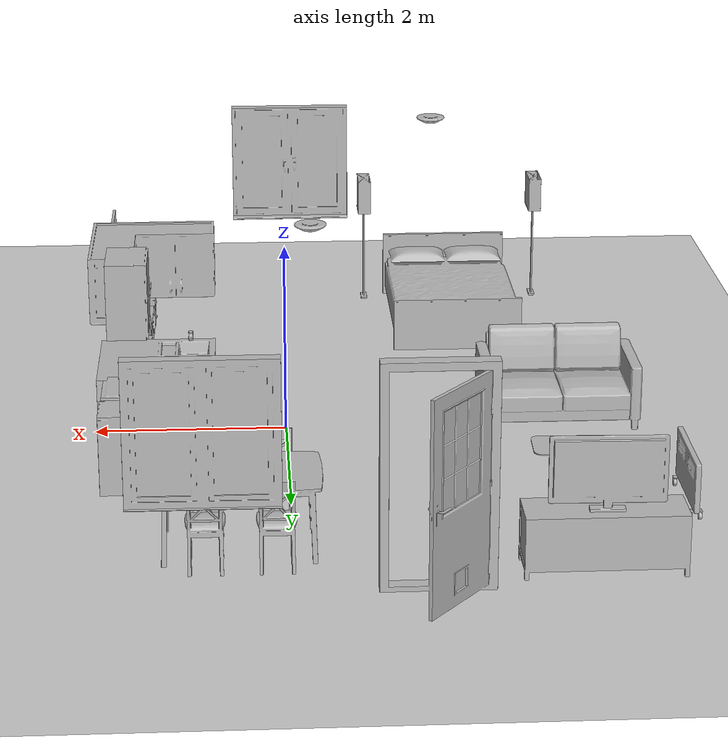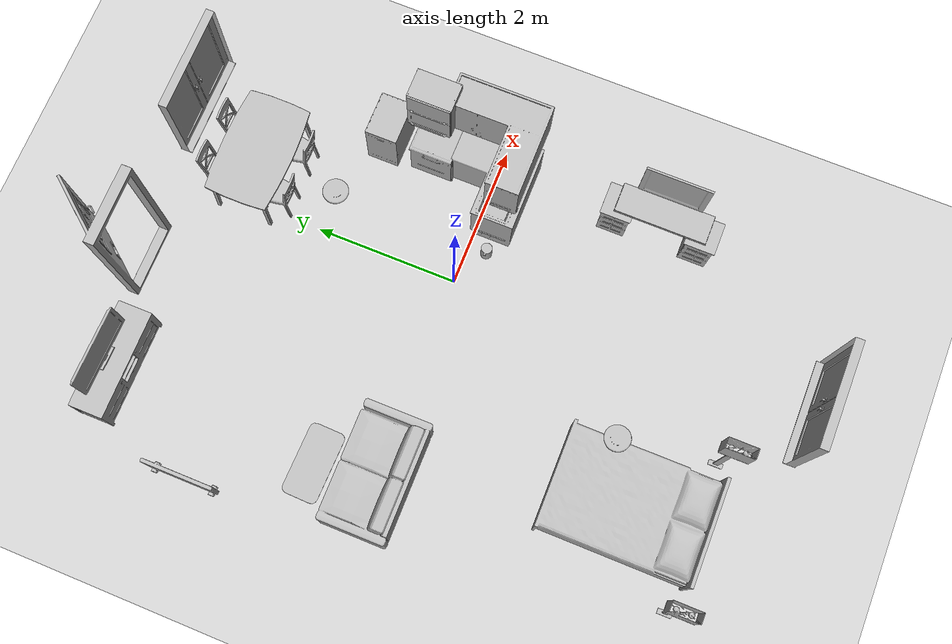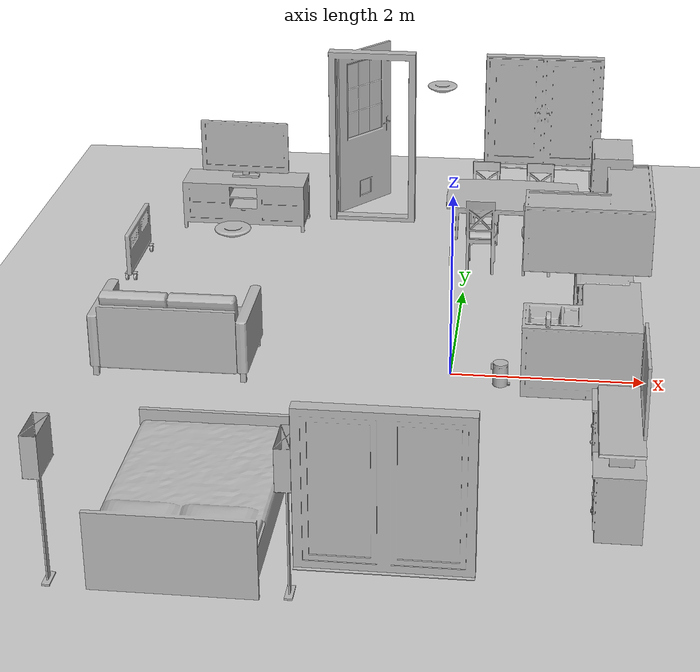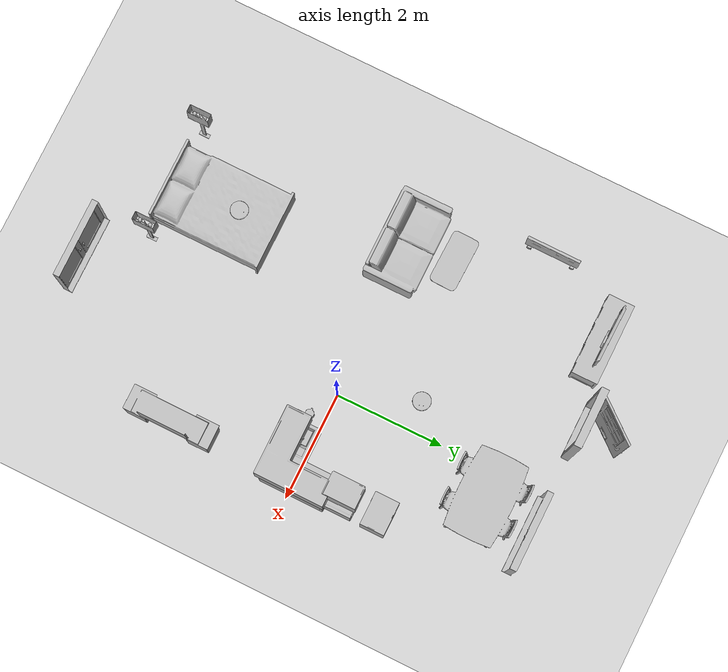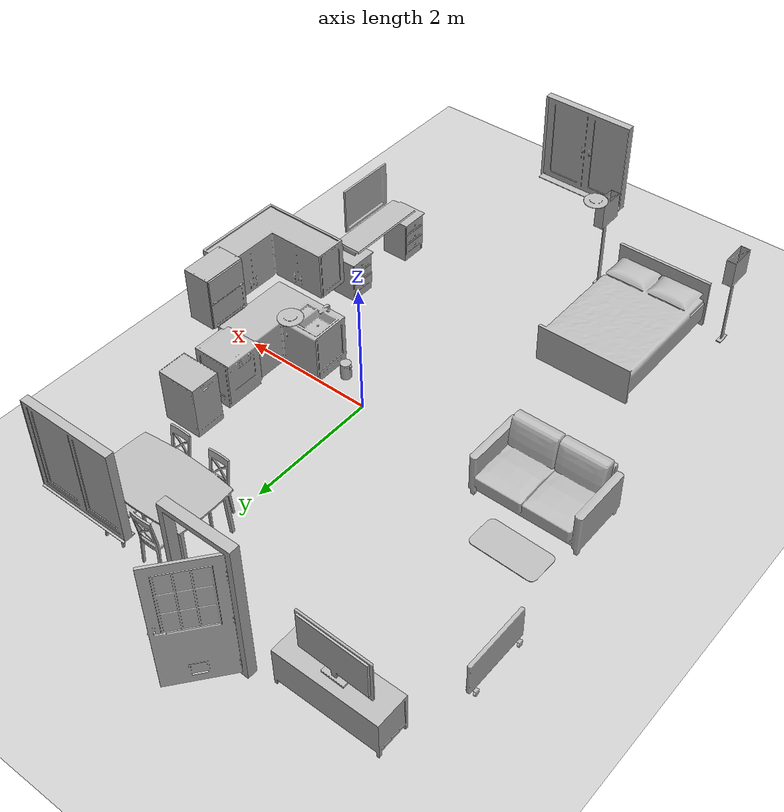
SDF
<sdf version="1.4">
 <world name="default">
  <light name="sun" type="directional">
   <pose>0 0 10 0 -0 0</pose>
   <diffuse>0.8 0.8 0.8 1</diffuse>
   <specular>0.2 0.2 0.2 1</specular>
   <attenuation>
    <range>1000</range>
    <constant>0.9</constant>
    <linear>0.01</linear>
    <quadratic>0.001</quadratic>
   </attenuation>
   <direction>-0.5 0.1 -0.9</direction>
  </light>
  <model name="ground_plane">
   <static>1</static>
   <link name="link">
    <collision name="collision">
     <geometry><plane><normal>0 0 1</normal><size>100 100</size></plane></geometry>
     <surface><friction><ode><mu>100</mu><mu2>50</mu2></ode></friction></surface>
    </collision>
    <visual name="visual">
     <cast_shadows>0</cast_shadows>
     <geometry><plane><normal>0 0 1</normal><size>100 100</size></plane></geometry>
     <material>
      <script><uri>file://media/materials/scripts/gazebo.material</uri><name>Gazebo/Grey</name></script>
     </material>
    </visual>
    <velocity_decay><linear>0</linear><angular>0</angular></velocity_decay>
   </link>
  </model>
  <physics type="ode">
   <max_step_size>0.001</max_step_size>
   <real_time_factor>1</real_time_factor>
   <real_time_update_rate>1000</real_time_update_rate>
   <gravity>0 0 -9.8</gravity>
  </physics>
  <scene><ambient>0.4 0.4 0.4 1</ambient><background>0.7 0.7 0.7 1</background><shadows>1</shadows></scene>
  <spherical_coordinates>
   <surface_model>EARTH_WGS84</surface_model>
   <latitude_deg>0</latitude_deg>
   <longitude_deg>0</longitude_deg>
   <elevation>0</elevation>
   <heading_deg>0</heading_deg>
  </spherical_coordinates>
  <model name="209_0">
   <pose>-0.174892 -4.86911 0.85 0 -0 1.5708</pose>
   <static>1</static>
   <link name="link">
    <collision name="collision"><geometry><box><size>0.175 1.4 2</size></box></geometry></collision>
    <visual name="visual"><geometry><mesh><uri>model://209/209.dae</uri></mesh></geometry></visual>
    <velocity_decay><linear>0</linear><angular>0</angular></velocity_decay>
   </link>
  </model>
  <model name="758_0">
   <pose>-1.26542 3.98998 0.04 0 0 -1.5708</pose>
   <static>1</static>
   <link name="link">
    <collision name="collision"><geometry><box><size>0.839759 1.06 2</size></box></geometry></collision>
    <visual name="visual"><geometry><mesh><uri>model://758/758.dae</uri></mesh></geometry></visual>
    <velocity_decay><linear>0</linear><angular>0</angular></velocity_decay>
   </link>
  </model>
  <model name="403_0">
   <pose>-2.01328 -3.21658 0.05 0 -0 1.5708</pose>
   <static>1</static>
   <link name="link">
    <collision name="collision"><geometry><box><size>2.07001 1.46005 2</size></box></geometry></collision>
    <visual name="visual"><geometry><mesh><uri>model://403/403.dae</uri></mesh></geometry></visual>
    <velocity_decay><linear>0</linear><angular>0</angular></velocity_decay>
   </link>
  </model>
  <model name="57_0">
   <pose>-2.86949 -0.072578 0.05 0 -0 1.5708</pose>
   <static>1</static>
   <link name="link">
    <collision name="collision"><geometry><box><size>0.969847 1.65014 2</size></box></geometry></collision>
    <visual name="visual"><geometry><mesh><uri>model://57/57.dae</uri></mesh></geometry></visual>
    <velocity_decay><linear>0</linear><angular>0</angular></velocity_decay>
   </link>
  </model>
  <model name="451_0">
   <pose>-2.80546 3.66385 0.05 0 0 -1.5708</pose>
   <static>1</static>
   <link name="link">
    <collision name="collision"><geometry><box><size>0.5 1.5 2</size></box></geometry></collision>
    <visual name="visual"><geometry><mesh><uri>model://451/451.dae</uri></mesh></geometry></visual>
    <velocity_decay><linear>0</linear><angular>0</angular></velocity_decay>
   </link>
  </model>
  <model name="113_0">
   <pose>-2.81473 3.73255 0.650076 0 0 -1.59388</pose>
   <static>1</static>
   <link name="link">
    <collision name="collision"><geometry><box><size>0.1 1.07995 2</size></box></geometry></collision>
    <visual name="visual"><geometry><mesh><uri>model://113/113.dae</uri></mesh></geometry></visual>
    <velocity_decay><linear>0</linear><angular>0</angular></velocity_decay>
   </link>
  </model>
  <model name="235_0">
   <pose>-3.01052 0.781383 0.05 0 -0 1.54232</pose>
   <static>1</static>
   <link name="link">
    <collision name="collision"><geometry><box><size>0.5 1 0</size></box></geometry></collision>
    <visual name="visual"><geometry><mesh><uri>model://235/235.dae</uri></mesh></geometry></visual>
    <velocity_decay><linear>0</linear><angular>0</angular></velocity_decay>
   </link>
  </model>
  <model name="209_1">
   <pose>0.821254 3.91696 0.85 0 0 -1.5708</pose>
   <static>1</static>
   <link name="link">
    <collision name="collision"><geometry><box><size>0.175 1.4 2</size></box></geometry></collision>
    <visual name="visual"><geometry><mesh><uri>model://209/209.dae</uri></mesh></geometry></visual>
    <velocity_decay><linear>0</linear><angular>0</angular></velocity_decay>
   </link>
  </model>
  <model name="s__487_0">
   <pose>-1.71264 -2.60956 2.61 0 -0 0</pose>
   <static>1</static>
   <link name="link">
    <collision name="collision"><geometry><box><size>0.31 0.31 0</size></box></geometry></collision>
    <visual name="visual"><geometry><mesh><uri>model://s__487/s__487.dae</uri></mesh></geometry></visual>
    <velocity_decay><linear>0</linear><angular>0</angular></velocity_decay>
   </link>
  </model>
  <model name="s__487_1">
   <pose>-0.224657 1.41543 2.61 0 -0 0</pose>
   <static>1</static>
   <link name="link">
    <collision name="collision"><geometry><box><size>0.31 0.31 0</size></box></geometry></collision>
    <visual name="visual"><geometry><mesh><uri>model://s__487/s__487.dae</uri></mesh></geometry></visual>
    <velocity_decay><linear>0</linear><angular>0</angular></velocity_decay>
   </link>
  </model>
  <model name="524_0">
   <pose>-1.04285 -4.12857 0.05 0 -0 3.14159</pose>
   <static>1</static>
   <link name="link">
    <collision name="collision"><geometry><box><size>0.149959 0.399932 2</size></box></geometry></collision>
    <visual name="visual"><geometry><mesh><uri>model://524/524.dae</uri></mesh></geometry></visual>
    <velocity_decay><linear>0</linear><angular>0</angular></velocity_decay>
   </link>
  </model>
  <model name="524_1">
   <pose>-3.09259 -4.14057 0.05 0 -0 0</pose>
   <static>1</static>
   <link name="link">
    <collision name="collision"><geometry><box><size>0.149959 0.399932 2</size></box></geometry></collision>
    <visual name="visual"><geometry><mesh><uri>model://524/524.dae</uri></mesh></geometry></visual>
    <velocity_decay><linear>0</linear><angular>0</angular></velocity_decay>
   </link>
  </model>
  <model name="203_0">
   <pose>1.65735 -2.31657 0.05 0 -0 3.14159</pose>
   <static>1</static>
   <link name="link">
    <collision name="collision"><geometry><box><size>0.460001 1.61 2</size></box></geometry></collision>
    <visual name="visual"><geometry><mesh><uri>model://203/203.dae</uri></mesh></geometry></visual>
    <velocity_decay><linear>0</linear><angular>0</angular></velocity_decay>
   </link>
  </model>
  <model name="134_0">
   <pose>0.508724 3.04624 0.05 0 0 -1.5708</pose>
   <static>1</static>
   <link name="link">
    <collision name="collision"><geometry><box><size>1.31043 1.55 2</size></box></geometry></collision>
    <visual name="visual"><geometry><mesh><uri>model://134/134.dae</uri></mesh></geometry></visual>
    <velocity_decay><linear>0</linear><angular>0</angular></velocity_decay>
   </link>
  </model>
  <model name="137_0">
   <pose>1.33533 0.071427 0.05 0 -0 1.5708</pose>
   <static>1</static>
   <link name="link">
    <collision name="collision"><geometry><box><size>1.2 1.19969 2</size></box></geometry></collision>
    <visual name="visual"><geometry><mesh><uri>model://137/137.dae</uri></mesh></geometry></visual>
    <velocity_decay><linear>0</linear><angular>0</angular></velocity_decay>
   </link>
  </model>
  <model name="101_0">
   <pose>1.56334 0.863431 0.05 0 -0 3.14159</pose>
   <static>1</static>
   <link name="link">
    <collision name="collision"><geometry><box><size>0.600001 0.600354 2</size></box></geometry></collision>
    <visual name="visual"><geometry><mesh><uri>model://101/101.dae</uri></mesh></geometry></visual>
    <velocity_decay><linear>0</linear><angular>0</angular></velocity_decay>
   </link>
  </model>
  <model name="287_0">
   <pose>1.56334 0.911427 1.45 0 -0 3.14159</pose>
   <static>1</static>
   <link name="link">
    <collision name="collision"><geometry><box><size>0.433989 0.6 2</size></box></geometry></collision>
    <visual name="visual"><geometry><mesh><uri>model://287/287.dae</uri></mesh></geometry></visual>
    <velocity_decay><linear>0</linear><angular>0</angular></velocity_decay>
   </link>
  </model>
  <model name="251_0">
   <pose>1.34734 0.083429 1.44 0 -0 3.14159</pose>
   <static>1</static>
   <link name="link">
    <collision name="collision"><geometry><box><size>1.2455 1.25208 2</size></box></geometry></collision>
    <visual name="visual"><geometry><mesh><uri>model://251/251.dae</uri></mesh></geometry></visual>
    <velocity_decay><linear>0</linear><angular>0</angular></velocity_decay>
   </link>
  </model>
  <model name="395_0">
   <pose>0.525352 -0.268947 0.05 0 -0 0</pose>
   <static>1</static>
   <link name="link">
    <collision name="collision"><geometry><box><size>0.199765 0.157 2</size></box></geometry></collision>
    <visual name="visual"><geometry><mesh><uri>model://395/395.dae</uri></mesh></geometry></visual>
    <velocity_decay><linear>0</linear><angular>0</angular></velocity_decay>
   </link>
  </model>
  <model name="219_0">
   <pose>1.56334 1.5741 0.05 0 -0 3.14159</pose>
   <static>1</static>
   <link name="link">
    <collision name="collision"><geometry><box><size>0.6115 0.45 2</size></box></geometry></collision>
    <visual name="visual"><geometry><mesh><uri>model://219/219.dae</uri></mesh></geometry></visual>
    <velocity_decay><linear>0</linear><angular>0</angular></velocity_decay>
   </link>
  </model>
  <model name="230_0">
   <pose>-3.83916 2.25543 0.05 0 -0 0</pose>
   <static>1</static>
   <link name="link">
    <collision name="collision"><geometry><box><size>0.138051 1.00002 2</size></box></geometry></collision>
    <visual name="visual"><geometry><mesh><uri>model://230/230.dae</uri></mesh></geometry></visual>
    <velocity_decay><linear>0</linear><angular>0</angular></velocity_decay>
   </link>
  </model>
 </world>
</sdf>
